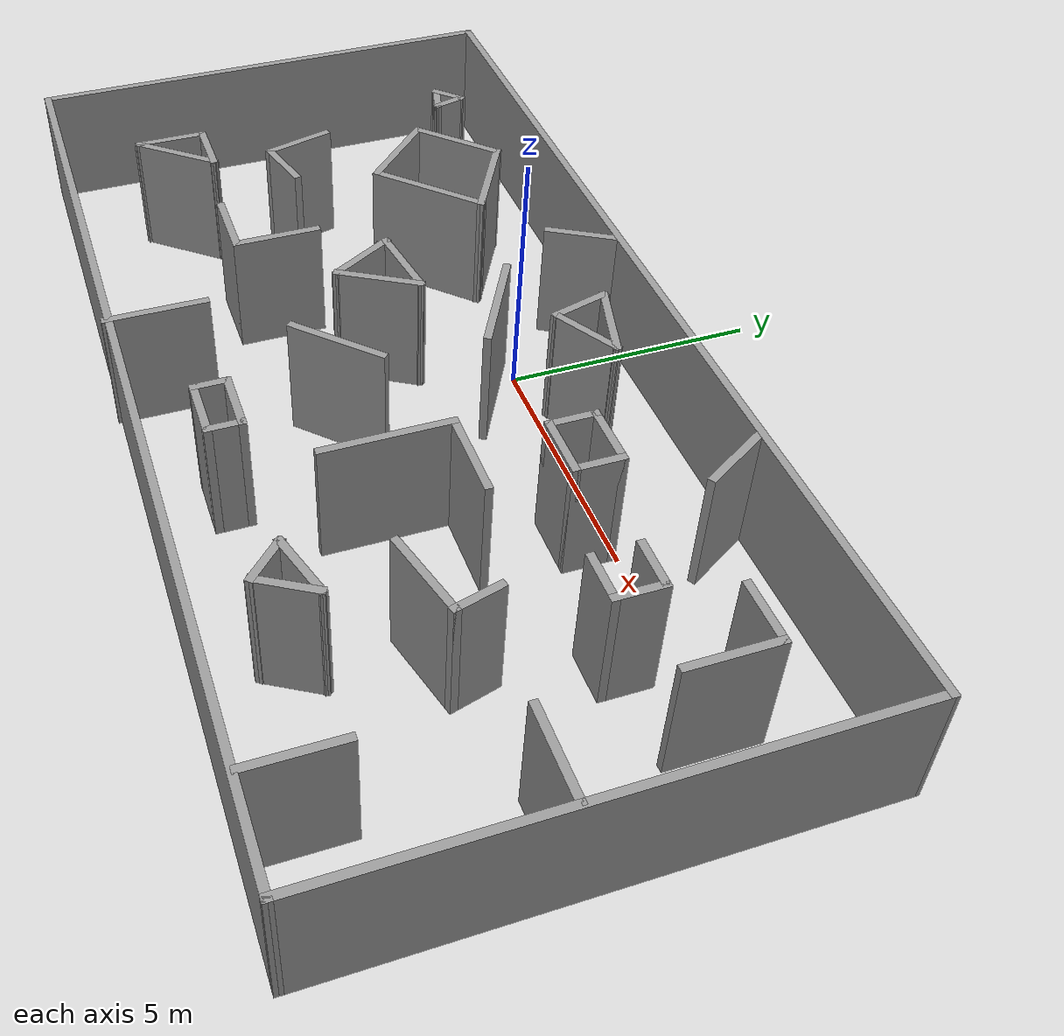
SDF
<?xml version='1.0'?>
<sdf version='1.7'>
  <model name='hard_ground'>
    <pose>0.65293 -2.63053 0 0 -0 0</pose>
    <link name='Wall_0'>
      <collision name='Wall_0_Collision'>
        <geometry>
          <box>
            <size>10.0031 0.15 2.5</size>
          </box>
        </geometry>
        <pose>0 0 1.25 0 -0 0</pose>
      </collision>
      <visual name='Wall_0_Visual'>
        <pose>0 0 1.25 0 -0 0</pose>
        <geometry>
          <box>
            <size>10.0031 0.15 2.5</size>
          </box>
        </geometry>
        <material>
          <script>
            <uri>file://media/materials/scripts/gazebo.material</uri>
            <name>Gazebo/Grey</name>
          </script>
          <ambient>1 1 1 1</ambient>
        </material>
        <meta>
          <layer>0</layer>
        </meta>
      </visual>
      <pose>-9.925 0.018435 0 0 -0 -1.56842</pose>
    </link>
    <link name='Wall_1'>
      <collision name='Wall_1_Collision'>
        <geometry>
          <box>
            <size>20 0.15 2.5</size>
          </box>
        </geometry>
        <pose>0 0 1.25 0 -0 0</pose>
      </collision>
      <visual name='Wall_1_Visual'>
        <pose>0 0 1.25 0 -0 0</pose>
        <geometry>
          <box>
            <size>20 0.15 2.5</size>
          </box>
        </geometry>
        <material>
          <script>
            <uri>file://media/materials/scripts/gazebo.material</uri>
            <name>Gazebo/Grey</name>
          </script>
          <ambient>1 1 1 1</ambient>
        </material>
        <meta>
          <layer>0</layer>
        </meta>
      </visual>
      <pose>0.011693 -4.90011 0 0 -0 0.000804</pose>
    </link>
    <link name='Wall_10'>
      <collision name='Wall_10_Collision'>
        <geometry>
          <box>
            <size>2 0.15 2.5</size>
          </box>
        </geometry>
        <pose>0 0 1.25 0 -0 0</pose>
      </collision>
      <visual name='Wall_10_Visual'>
        <pose>0 0 1.25 0 -0 0</pose>
        <geometry>
          <box>
            <size>2 0.15 2.5</size>
          </box>
        </geometry>
        <material>
          <script>
            <uri>file://media/materials/scripts/gazebo.material</uri>
            <name>Gazebo/Grey</name>
          </script>
          <ambient>1 1 1 1</ambient>
        </material>
        <meta>
          <layer>0</layer>
        </meta>
      </visual>
      <pose>-5.58153 1.80552 0 0 -0 -0.785398</pose>
    </link>
    <link name='Wall_11'>
      <collision name='Wall_11_Collision'>
        <geometry>
          <box>
            <size>2.5 0.15 2.5</size>
          </box>
        </geometry>
        <pose>0 0 1.25 0 -0 0</pose>
      </collision>
      <visual name='Wall_11_Visual'>
        <pose>0 0 1.25 0 -0 0</pose>
        <geometry>
          <box>
            <size>2.5 0.15 2.5</size>
          </box>
        </geometry>
        <material>
          <script>
            <uri>file://media/materials/scripts/gazebo.material</uri>
            <name>Gazebo/Grey</name>
          </script>
          <ambient>1 1 1 1</ambient>
        </material>
        <meta>
          <layer>0</layer>
        </meta>
      </visual>
      <pose>-4.09661 1.98229 0 0 -0 0.785398</pose>
    </link>
    <link name='Wall_12'>
      <collision name='Wall_12_Collision'>
        <geometry>
          <box>
            <size>2.06638 0.15 2.5</size>
          </box>
        </geometry>
        <pose>0 0 1.25 0 -0 0</pose>
      </collision>
      <visual name='Wall_12_Visual'>
        <pose>0 0 1.25 0 -0 0</pose>
        <geometry>
          <box>
            <size>2.06638 0.15 2.5</size>
          </box>
        </geometry>
        <material>
          <script>
            <uri>file://media/materials/scripts/gazebo.material</uri>
            <name>Gazebo/Grey</name>
          </script>
          <ambient>1 1 1 1</ambient>
        </material>
        <meta>
          <layer>0</layer>
        </meta>
      </visual>
      <pose>-4.09661 3.29044 0 0 -0 2.62016</pose>
    </link>
    <link name='Wall_14'>
      <collision name='Wall_14_Collision'>
        <geometry>
          <box>
            <size>1.5 0.15 2.5</size>
          </box>
        </geometry>
        <pose>0 0 1.25 0 -0 0</pose>
      </collision>
      <visual name='Wall_14_Visual'>
        <pose>0 0 1.25 0 -0 0</pose>
        <geometry>
          <box>
            <size>1.5 0.15 2.5</size>
          </box>
        </geometry>
        <material>
          <script>
            <uri>file://media/materials/scripts/gazebo.material</uri>
            <name>Gazebo/Grey</name>
          </script>
          <ambient>1 1 1 1</ambient>
        </material>
        <meta>
          <layer>0</layer>
        </meta>
      </visual>
      <pose>-6.56298 -0.102434 0 0 -0 -1.309</pose>
    </link>
    <link name='Wall_15'>
      <collision name='Wall_15_Collision'>
        <geometry>
          <box>
            <size>1.25 0.15 2.5</size>
          </box>
        </geometry>
        <pose>0 0 1.25 0 -0 0</pose>
      </collision>
      <visual name='Wall_15_Visual'>
        <pose>0 0 1.25 0 -0 0</pose>
        <geometry>
          <box>
            <size>1.25 0.15 2.5</size>
          </box>
        </geometry>
        <material>
          <script>
            <uri>file://media/materials/scripts/gazebo.material</uri>
            <name>Gazebo/Grey</name>
          </script>
          <ambient>1 1 1 1</ambient>
        </material>
        <meta>
          <layer>0</layer>
        </meta>
      </visual>
      <pose>-5.85702 -0.612083 0 0 -0 0.261799</pose>
    </link>
    <link name='Wall_17'>
      <collision name='Wall_17_Collision'>
        <geometry>
          <box>
            <size>1.25 0.15 2.5</size>
          </box>
        </geometry>
        <pose>0 0 1.25 0 -0 0</pose>
      </collision>
      <visual name='Wall_17_Visual'>
        <pose>0 0 1.25 0 -0 0</pose>
        <geometry>
          <box>
            <size>1.25 0.15 2.5</size>
          </box>
        </geometry>
        <material>
          <script>
            <uri>file://media/materials/scripts/gazebo.material</uri>
            <name>Gazebo/Grey</name>
          </script>
          <ambient>1 1 1 1</ambient>
        </material>
        <meta>
          <layer>0</layer>
        </meta>
      </visual>
      <pose>-6.94575 -1.96463 0 0 -0 3.14159</pose>
    </link>
    <link name='Wall_18'>
      <collision name='Wall_18_Collision'>
        <geometry>
          <box>
            <size>1.5 0.15 2.5</size>
          </box>
        </geometry>
        <pose>0 0 1.25 0 -0 0</pose>
      </collision>
      <visual name='Wall_18_Visual'>
        <pose>0 0 1.25 0 -0 0</pose>
        <geometry>
          <box>
            <size>1.5 0.15 2.5</size>
          </box>
        </geometry>
        <material>
          <script>
            <uri>file://media/materials/scripts/gazebo.material</uri>
            <name>Gazebo/Grey</name>
          </script>
          <ambient>1 1 1 1</ambient>
        </material>
        <meta>
          <layer>0</layer>
        </meta>
      </visual>
      <pose>-7.49575 -2.63963 0 0 -0 -1.5708</pose>
    </link>
    <link name='Wall_19'>
      <collision name='Wall_19_Collision'>
        <geometry>
          <box>
            <size>1.89141 0.15 2.5</size>
          </box>
        </geometry>
        <pose>0 0 1.25 0 -0 0</pose>
      </collision>
      <visual name='Wall_19_Visual'>
        <pose>0 0 1.25 0 -0 0</pose>
        <geometry>
          <box>
            <size>1.89141 0.15 2.5</size>
          </box>
        </geometry>
        <material>
          <script>
            <uri>file://media/materials/scripts/gazebo.material</uri>
            <name>Gazebo/Grey</name>
          </script>
          <ambient>1 1 1 1</ambient>
        </material>
        <meta>
          <layer>0</layer>
        </meta>
      </visual>
      <pose>-6.94575 -2.63963 0 0 -0 0.887087</pose>
    </link>
    <link name='Wall_2'>
      <collision name='Wall_2_Collision'>
        <geometry>
          <box>
            <size>10.0031 0.15 2.5</size>
          </box>
        </geometry>
        <pose>0 0 1.25 0 -0 0</pose>
      </collision>
      <visual name='Wall_2_Visual'>
        <pose>0 0 1.25 0 -0 0</pose>
        <geometry>
          <box>
            <size>10.0031 0.15 2.5</size>
          </box>
        </geometry>
        <material>
          <script>
            <uri>file://media/materials/scripts/gazebo.material</uri>
            <name>Gazebo/Grey</name>
          </script>
          <ambient>1 1 1 1</ambient>
        </material>
        <meta>
          <layer>0</layer>
        </meta>
      </visual>
      <pose>9.925 0.034398 0 0 -0 1.57317</pose>
    </link>
    <link name='Wall_21'>
      <collision name='Wall_21_Collision'>
        <geometry>
          <box>
            <size>1.5 0.15 2.5</size>
          </box>
        </geometry>
        <pose>0 0 1.25 0 -0 0</pose>
      </collision>
      <visual name='Wall_21_Visual'>
        <pose>0 0 1.25 0 -0 0</pose>
        <geometry>
          <box>
            <size>1.5 0.15 2.5</size>
          </box>
        </geometry>
        <material>
          <script>
            <uri>file://media/materials/scripts/gazebo.material</uri>
            <name>Gazebo/Grey</name>
          </script>
          <ambient>1 1 1 1</ambient>
        </material>
        <meta>
          <layer>0</layer>
        </meta>
      </visual>
      <pose>-4.11167 -2.16577 0 0 -0 0</pose>
    </link>
    <link name='Wall_22'>
      <collision name='Wall_22_Collision'>
        <geometry>
          <box>
            <size>1.75 0.15 2.5</size>
          </box>
        </geometry>
        <pose>0 0 1.25 0 -0 0</pose>
      </collision>
      <visual name='Wall_22_Visual'>
        <pose>0 0 1.25 0 -0 0</pose>
        <geometry>
          <box>
            <size>1.75 0.15 2.5</size>
          </box>
        </geometry>
        <material>
          <script>
            <uri>file://media/materials/scripts/gazebo.material</uri>
            <name>Gazebo/Grey</name>
          </script>
          <ambient>1 1 1 1</ambient>
        </material>
        <meta>
          <layer>0</layer>
        </meta>
      </visual>
      <pose>-3.43667 -1.36577 0 0 -0 1.5708</pose>
    </link>
    <link name='Wall_24'>
      <collision name='Wall_24_Collision'>
        <geometry>
          <box>
            <size>1.5 0.15 2.5</size>
          </box>
        </geometry>
        <pose>0 0 1.25 0 -0 0</pose>
      </collision>
      <visual name='Wall_24_Visual'>
        <pose>0 0 1.25 0 -0 0</pose>
        <geometry>
          <box>
            <size>1.5 0.15 2.5</size>
          </box>
        </geometry>
        <material>
          <script>
            <uri>file://media/materials/scripts/gazebo.material</uri>
            <name>Gazebo/Grey</name>
          </script>
          <ambient>1 1 1 1</ambient>
        </material>
        <meta>
          <layer>0</layer>
        </meta>
      </visual>
      <pose>-2.29701 0.02534 0 0 -0 -1.0472</pose>
    </link>
    <link name='Wall_25'>
      <collision name='Wall_25_Collision'>
        <geometry>
          <box>
            <size>1.75 0.15 2.5</size>
          </box>
        </geometry>
        <pose>0 0 1.25 0 -0 0</pose>
      </collision>
      <visual name='Wall_25_Visual'>
        <pose>0 0 1.25 0 -0 0</pose>
        <geometry>
          <box>
            <size>1.75 0.15 2.5</size>
          </box>
        </geometry>
        <material>
          <script>
            <uri>file://media/materials/scripts/gazebo.material</uri>
            <name>Gazebo/Grey</name>
          </script>
          <ambient>1 1 1 1</ambient>
        </material>
        <meta>
          <layer>0</layer>
        </meta>
      </visual>
      <pose>-1.55951 0.133593 0 0 -0 1.0472</pose>
    </link>
    <link name='Wall_26'>
      <collision name='Wall_26_Collision'>
        <geometry>
          <box>
            <size>1.64081 0.15 2.5</size>
          </box>
        </geometry>
        <pose>0 0 1.25 0 -0 0</pose>
      </collision>
      <visual name='Wall_26_Visual'>
        <pose>0 0 1.25 0 -0 0</pose>
        <geometry>
          <box>
            <size>1.64081 0.15 2.5</size>
          </box>
        </geometry>
        <material>
          <script>
            <uri>file://media/materials/scripts/gazebo.material</uri>
            <name>Gazebo/Grey</name>
          </script>
          <ambient>1 1 1 1</ambient>
        </material>
        <meta>
          <layer>0</layer>
        </meta>
      </visual>
      <pose>-1.89701 0.71816 0 0 -0 -2.99585</pose>
    </link>
    <link name='Wall_28'>
      <collision name='Wall_28_Collision'>
        <geometry>
          <box>
            <size>2.25 0.15 2.5</size>
          </box>
        </geometry>
        <pose>0 0 1.25 0 -0 0</pose>
      </collision>
      <visual name='Wall_28_Visual'>
        <pose>0 0 1.25 0 -0 0</pose>
        <geometry>
          <box>
            <size>2.25 0.15 2.5</size>
          </box>
        </geometry>
        <material>
          <script>
            <uri>file://media/materials/scripts/gazebo.material</uri>
            <name>Gazebo/Grey</name>
          </script>
          <ambient>1 1 1 1</ambient>
        </material>
        <meta>
          <layer>0</layer>
        </meta>
      </visual>
      <pose>-0.236783 2.01581 0 0 -0 -0.523599</pose>
    </link>
    <link name='Wall_3'>
      <collision name='Wall_3_Collision'>
        <geometry>
          <box>
            <size>20 0.15 2.5</size>
          </box>
        </geometry>
        <pose>0 0 1.25 0 -0 0</pose>
      </collision>
      <visual name='Wall_3_Visual'>
        <pose>0 0 1.25 0 -0 0</pose>
        <geometry>
          <box>
            <size>20 0.15 2.5</size>
          </box>
        </geometry>
        <material>
          <script>
            <uri>file://media/materials/scripts/gazebo.material</uri>
            <name>Gazebo/Grey</name>
          </script>
          <ambient>1 1 1 1</ambient>
        </material>
        <meta>
          <layer>0</layer>
        </meta>
      </visual>
      <pose>-0.011694 4.95294 0 0 -0 -3.14079</pose>
    </link>
    <link name='Wall_32'>
      <collision name='Wall_32_Collision'>
        <geometry>
          <box>
            <size>1.5 0.15 2.5</size>
          </box>
        </geometry>
        <pose>0 0 1.25 0 -0 0</pose>
      </collision>
      <visual name='Wall_32_Visual'>
        <pose>0 0 1.25 0 -0 0</pose>
        <geometry>
          <box>
            <size>1.5 0.15 2.5</size>
          </box>
        </geometry>
        <material>
          <script>
            <uri>file://media/materials/scripts/gazebo.material</uri>
            <name>Gazebo/Grey</name>
          </script>
          <ambient>1 1 1 1</ambient>
        </material>
        <meta>
          <layer>0</layer>
        </meta>
      </visual>
      <pose>-1.66463 4.32964 0 0 -0 -2.0944</pose>
    </link>
    <link name='Wall_34'>
      <collision name='Wall_34_Collision'>
        <geometry>
          <box>
            <size>1.25 0.15 2.5</size>
          </box>
        </geometry>
        <pose>0 0 1.25 0 -0 0</pose>
      </collision>
      <visual name='Wall_34_Visual'>
        <pose>0 0 1.25 0 -0 0</pose>
        <geometry>
          <box>
            <size>1.25 0.15 2.5</size>
          </box>
        </geometry>
        <material>
          <script>
            <uri>file://media/materials/scripts/gazebo.material</uri>
            <name>Gazebo/Grey</name>
          </script>
          <ambient>1 1 1 1</ambient>
        </material>
        <meta>
          <layer>0</layer>
        </meta>
      </visual>
      <pose>0.34385 3.4175 0 0 -0 -1.309</pose>
    </link>
    <link name='Wall_35'>
      <collision name='Wall_35_Collision'>
        <geometry>
          <box>
            <size>1.5 0.15 2.5</size>
          </box>
        </geometry>
        <pose>0 0 1.25 0 -0 0</pose>
      </collision>
      <visual name='Wall_35_Visual'>
        <pose>0 0 1.25 0 -0 0</pose>
        <geometry>
          <box>
            <size>1.5 0.15 2.5</size>
          </box>
        </geometry>
        <material>
          <script>
            <uri>file://media/materials/scripts/gazebo.material</uri>
            <name>Gazebo/Grey</name>
          </script>
          <ambient>1 1 1 1</ambient>
        </material>
        <meta>
          <layer>0</layer>
        </meta>
      </visual>
      <pose>1.07077 3.22374 0 0 -0 0.523599</pose>
    </link>
    <link name='Wall_36'>
      <collision name='Wall_36_Collision'>
        <geometry>
          <box>
            <size>1.6546 0.15 2.5</size>
          </box>
        </geometry>
        <pose>0 0 1.25 0 -0 0</pose>
      </collision>
      <visual name='Wall_36_Visual'>
        <pose>0 0 1.25 0 -0 0</pose>
        <geometry>
          <box>
            <size>1.6546 0.15 2.5</size>
          </box>
        </geometry>
        <material>
          <script>
            <uri>file://media/materials/scripts/gazebo.material</uri>
            <name>Gazebo/Grey</name>
          </script>
          <ambient>1 1 1 1</ambient>
        </material>
        <meta>
          <layer>0</layer>
        </meta>
      </visual>
      <pose>0.928418 3.755 0 0 -0 2.8811</pose>
    </link>
    <link name='Wall_39'>
      <collision name='Wall_39_Collision'>
        <geometry>
          <box>
            <size>2 0.15 2.5</size>
          </box>
        </geometry>
        <pose>0 0 1.25 0 -0 0</pose>
      </collision>
      <visual name='Wall_39_Visual'>
        <pose>0 0 1.25 0 -0 0</pose>
        <geometry>
          <box>
            <size>2 0.15 2.5</size>
          </box>
        </geometry>
        <material>
          <script>
            <uri>file://media/materials/scripts/gazebo.material</uri>
            <name>Gazebo/Grey</name>
          </script>
          <ambient>1 1 1 1</ambient>
        </material>
        <meta>
          <layer>0</layer>
        </meta>
      </visual>
      <pose>-0.069651 -1.10942 0 0 -0 0.785398</pose>
    </link>
    <link name='Wall_42'>
      <collision name='Wall_42_Collision'>
        <geometry>
          <box>
            <size>2 0.15 2.5</size>
          </box>
        </geometry>
        <pose>0 0 1.25 0 -0 0</pose>
      </collision>
      <visual name='Wall_42_Visual'>
        <pose>0 0 1.25 0 -0 0</pose>
        <geometry>
          <box>
            <size>2 0.15 2.5</size>
          </box>
        </geometry>
        <material>
          <script>
            <uri>file://media/materials/scripts/gazebo.material</uri>
            <name>Gazebo/Grey</name>
          </script>
          <ambient>1 1 1 1</ambient>
        </material>
        <meta>
          <layer>0</layer>
        </meta>
      </visual>
      <pose>-1.89031 -4.0361 0 0 -0 -1.5708</pose>
    </link>
    <link name='Wall_45'>
      <collision name='Wall_45_Collision'>
        <geometry>
          <box>
            <size>0.75 0.15 2.5</size>
          </box>
        </geometry>
        <pose>0 0 1.25 0 -0 0</pose>
      </collision>
      <visual name='Wall_45_Visual'>
        <pose>0 0 1.25 0 -0 0</pose>
        <geometry>
          <box>
            <size>0.75 0.15 2.5</size>
          </box>
        </geometry>
        <material>
          <script>
            <uri>file://media/materials/scripts/gazebo.material</uri>
            <name>Gazebo/Grey</name>
          </script>
          <ambient>1 1 1 1</ambient>
        </material>
        <meta>
          <layer>0</layer>
        </meta>
      </visual>
      <pose>0.382522 -3.51167 0 0 -0 -1.5708</pose>
    </link>
    <link name='Wall_46'>
      <collision name='Wall_46_Collision'>
        <geometry>
          <box>
            <size>1.25 0.15 2.5</size>
          </box>
        </geometry>
        <pose>0 0 1.25 0 -0 0</pose>
      </collision>
      <visual name='Wall_46_Visual'>
        <pose>0 0 1.25 0 -0 0</pose>
        <geometry>
          <box>
            <size>1.25 0.15 2.5</size>
          </box>
        </geometry>
        <material>
          <script>
            <uri>file://media/materials/scripts/gazebo.material</uri>
            <name>Gazebo/Grey</name>
          </script>
          <ambient>1 1 1 1</ambient>
        </material>
        <meta>
          <layer>0</layer>
        </meta>
      </visual>
      <pose>0.932522 -3.81167 0 0 -0 0</pose>
    </link>
    <link name='Wall_47'>
      <collision name='Wall_47_Collision'>
        <geometry>
          <box>
            <size>0.75 0.15 2.5</size>
          </box>
        </geometry>
        <pose>0 0 1.25 0 -0 0</pose>
      </collision>
      <visual name='Wall_47_Visual'>
        <pose>0 0 1.25 0 -0 0</pose>
        <geometry>
          <box>
            <size>0.75 0.15 2.5</size>
          </box>
        </geometry>
        <material>
          <script>
            <uri>file://media/materials/scripts/gazebo.material</uri>
            <name>Gazebo/Grey</name>
          </script>
          <ambient>1 1 1 1</ambient>
        </material>
        <meta>
          <layer>0</layer>
        </meta>
      </visual>
      <pose>1.48252 -3.51167 0 0 -0 1.5708</pose>
    </link>
    <link name='Wall_48'>
      <collision name='Wall_48_Collision'>
        <geometry>
          <box>
            <size>1.25 0.15 2.5</size>
          </box>
        </geometry>
        <pose>0 0 1.25 0 -0 0</pose>
      </collision>
      <visual name='Wall_48_Visual'>
        <pose>0 0 1.25 0 -0 0</pose>
        <geometry>
          <box>
            <size>1.25 0.15 2.5</size>
          </box>
        </geometry>
        <material>
          <script>
            <uri>file://media/materials/scripts/gazebo.material</uri>
            <name>Gazebo/Grey</name>
          </script>
          <ambient>1 1 1 1</ambient>
        </material>
        <meta>
          <layer>0</layer>
        </meta>
      </visual>
      <pose>0.932522 -3.21167 0 0 -0 3.14159</pose>
    </link>
    <link name='Wall_5'>
      <collision name='Wall_5_Collision'>
        <geometry>
          <box>
            <size>0.75 0.15 2.5</size>
          </box>
        </geometry>
        <pose>0 0 1.25 0 -0 0</pose>
      </collision>
      <visual name='Wall_5_Visual'>
        <pose>0 0 1.25 0 -0 0</pose>
        <geometry>
          <box>
            <size>0.75 0.15 2.5</size>
          </box>
        </geometry>
        <material>
          <script>
            <uri>file://media/materials/scripts/gazebo.material</uri>
            <name>Gazebo/Grey</name>
          </script>
          <ambient>1 1 1 1</ambient>
        </material>
        <meta>
          <layer>0</layer>
        </meta>
      </visual>
      <pose>-7.39231 3.55561 0 0 -0 -2.35619</pose>
    </link>
    <link name='Wall_50'>
      <collision name='Wall_50_Collision'>
        <geometry>
          <box>
            <size>2.5 0.15 2.5</size>
          </box>
        </geometry>
        <pose>0 0 1.25 0 -0 0</pose>
      </collision>
      <visual name='Wall_50_Visual'>
        <pose>0 0 1.25 0 -0 0</pose>
        <geometry>
          <box>
            <size>2.5 0.15 2.5</size>
          </box>
        </geometry>
        <material>
          <script>
            <uri>file://media/materials/scripts/gazebo.material</uri>
            <name>Gazebo/Grey</name>
          </script>
          <ambient>1 1 1 1</ambient>
        </material>
        <meta>
          <layer>0</layer>
        </meta>
      </visual>
      <pose>2.55479 -0.990766 0 0 -0 1.5708</pose>
    </link>
    <link name='Wall_51'>
      <collision name='Wall_51_Collision'>
        <geometry>
          <box>
            <size>1.75 0.15 2.5</size>
          </box>
        </geometry>
        <pose>0 0 1.25 0 -0 0</pose>
      </collision>
      <visual name='Wall_51_Visual'>
        <pose>0 0 1.25 0 -0 0</pose>
        <geometry>
          <box>
            <size>1.75 0.15 2.5</size>
          </box>
        </geometry>
        <material>
          <script>
            <uri>file://media/materials/scripts/gazebo.material</uri>
            <name>Gazebo/Grey</name>
          </script>
          <ambient>1 1 1 1</ambient>
        </material>
        <meta>
          <layer>0</layer>
        </meta>
      </visual>
      <pose>3.35479 0.184234 0 0 -0 0</pose>
    </link>
    <link name='Wall_54'>
      <collision name='Wall_54_Collision'>
        <geometry>
          <box>
            <size>1 0.15 2.5</size>
          </box>
        </geometry>
        <pose>0 0 1.25 0 -0 0</pose>
      </collision>
      <visual name='Wall_54_Visual'>
        <pose>0 0 1.25 0 -0 0</pose>
        <geometry>
          <box>
            <size>1 0.15 2.5</size>
          </box>
        </geometry>
        <material>
          <script>
            <uri>file://media/materials/scripts/gazebo.material</uri>
            <name>Gazebo/Grey</name>
          </script>
          <ambient>1 1 1 1</ambient>
        </material>
        <meta>
          <layer>0</layer>
        </meta>
      </visual>
      <pose>3.11797 2.0957 0 0 -0 -1.5708</pose>
    </link>
    <link name='Wall_55'>
      <collision name='Wall_55_Collision'>
        <geometry>
          <box>
            <size>1.25 0.15 2.5</size>
          </box>
        </geometry>
        <pose>0 0 1.25 0 -0 0</pose>
      </collision>
      <visual name='Wall_55_Visual'>
        <pose>0 0 1.25 0 -0 0</pose>
        <geometry>
          <box>
            <size>1.25 0.15 2.5</size>
          </box>
        </geometry>
        <material>
          <script>
            <uri>file://media/materials/scripts/gazebo.material</uri>
            <name>Gazebo/Grey</name>
          </script>
          <ambient>1 1 1 1</ambient>
        </material>
        <meta>
          <layer>0</layer>
        </meta>
      </visual>
      <pose>3.66797 1.6707 0 0 -0 0</pose>
    </link>
    <link name='Wall_56'>
      <collision name='Wall_56_Collision'>
        <geometry>
          <box>
            <size>1 0.15 2.5</size>
          </box>
        </geometry>
        <pose>0 0 1.25 0 -0 0</pose>
      </collision>
      <visual name='Wall_56_Visual'>
        <pose>0 0 1.25 0 -0 0</pose>
        <geometry>
          <box>
            <size>1 0.15 2.5</size>
          </box>
        </geometry>
        <material>
          <script>
            <uri>file://media/materials/scripts/gazebo.material</uri>
            <name>Gazebo/Grey</name>
          </script>
          <ambient>1 1 1 1</ambient>
        </material>
        <meta>
          <layer>0</layer>
        </meta>
      </visual>
      <pose>4.21797 2.0957 0 0 -0 1.5708</pose>
    </link>
    <link name='Wall_57'>
      <collision name='Wall_57_Collision'>
        <geometry>
          <box>
            <size>1.25 0.15 2.5</size>
          </box>
        </geometry>
        <pose>0 0 1.25 0 -0 0</pose>
      </collision>
      <visual name='Wall_57_Visual'>
        <pose>0 0 1.25 0 -0 0</pose>
        <geometry>
          <box>
            <size>1.25 0.15 2.5</size>
          </box>
        </geometry>
        <material>
          <script>
            <uri>file://media/materials/scripts/gazebo.material</uri>
            <name>Gazebo/Grey</name>
          </script>
          <ambient>1 1 1 1</ambient>
        </material>
        <meta>
          <layer>0</layer>
        </meta>
      </visual>
      <pose>3.66797 2.5207 0 0 -0 3.14159</pose>
    </link>
    <link name='Wall_59'>
      <collision name='Wall_59_Collision'>
        <geometry>
          <box>
            <size>1.5 0.15 2.5</size>
          </box>
        </geometry>
        <pose>0 0 1.25 0 -0 0</pose>
      </collision>
      <visual name='Wall_59_Visual'>
        <pose>0 0 1.25 0 -0 0</pose>
        <geometry>
          <box>
            <size>1.5 0.15 2.5</size>
          </box>
        </geometry>
        <material>
          <script>
            <uri>file://media/materials/scripts/gazebo.material</uri>
            <name>Gazebo/Grey</name>
          </script>
          <ambient>1 1 1 1</ambient>
        </material>
        <meta>
          <layer>0</layer>
        </meta>
      </visual>
      <pose>4.78296 4.28942 0 0 -0 -1.0472</pose>
    </link>
    <link name='Wall_6'>
      <collision name='Wall_6_Collision'>
        <geometry>
          <box>
            <size>0.75 0.15 2.5</size>
          </box>
        </geometry>
        <pose>0 0 1.25 0 -0 0</pose>
      </collision>
      <visual name='Wall_6_Visual'>
        <pose>0 0 1.25 0 -0 0</pose>
        <geometry>
          <box>
            <size>0.75 0.15 2.5</size>
          </box>
        </geometry>
        <material>
          <script>
            <uri>file://media/materials/scripts/gazebo.material</uri>
            <name>Gazebo/Grey</name>
          </script>
          <ambient>1 1 1 1</ambient>
        </material>
        <meta>
          <layer>0</layer>
        </meta>
      </visual>
      <pose>-7.31467 3.26583 0 0 -0 -0.261799</pose>
    </link>
    <link name='Wall_61'>
      <collision name='Wall_61_Collision'>
        <geometry>
          <box>
            <size>1.25 0.15 2.5</size>
          </box>
        </geometry>
        <pose>0 0 1.25 0 -0 0</pose>
      </collision>
      <visual name='Wall_61_Visual'>
        <pose>0 0 1.25 0 -0 0</pose>
        <geometry>
          <box>
            <size>1.25 0.15 2.5</size>
          </box>
        </geometry>
        <material>
          <script>
            <uri>file://media/materials/scripts/gazebo.material</uri>
            <name>Gazebo/Grey</name>
          </script>
          <ambient>1 1 1 1</ambient>
        </material>
        <meta>
          <layer>0</layer>
        </meta>
      </visual>
      <pose>7.81136 3.18444 0 0 -0 0</pose>
    </link>
    <link name='Wall_62'>
      <collision name='Wall_62_Collision'>
        <geometry>
          <box>
            <size>1.75 0.15 2.5</size>
          </box>
        </geometry>
        <pose>0 0 1.25 0 -0 0</pose>
      </collision>
      <visual name='Wall_62_Visual'>
        <pose>0 0 1.25 0 -0 0</pose>
        <geometry>
          <box>
            <size>1.75 0.15 2.5</size>
          </box>
        </geometry>
        <material>
          <script>
            <uri>file://media/materials/scripts/gazebo.material</uri>
            <name>Gazebo/Grey</name>
          </script>
          <ambient>1 1 1 1</ambient>
        </material>
        <meta>
          <layer>0</layer>
        </meta>
      </visual>
      <pose>8.36136 2.38444 0 0 -0 -1.5708</pose>
    </link>
    <link name='Wall_64'>
      <collision name='Wall_64_Collision'>
        <geometry>
          <box>
            <size>1 0.15 2.5</size>
          </box>
        </geometry>
        <pose>0 0 1.25 0 -0 0</pose>
      </collision>
      <visual name='Wall_64_Visual'>
        <pose>0 0 1.25 0 -0 0</pose>
        <geometry>
          <box>
            <size>1 0.15 2.5</size>
          </box>
        </geometry>
        <material>
          <script>
            <uri>file://media/materials/scripts/gazebo.material</uri>
            <name>Gazebo/Grey</name>
          </script>
          <ambient>1 1 1 1</ambient>
        </material>
        <meta>
          <layer>0</layer>
        </meta>
      </visual>
      <pose>6.45944 2.01786 0 0 -0 0</pose>
    </link>
    <link name='Wall_65'>
      <collision name='Wall_65_Collision'>
        <geometry>
          <box>
            <size>1 0.15 2.5</size>
          </box>
        </geometry>
        <pose>0 0 1.25 0 -0 0</pose>
      </collision>
      <visual name='Wall_65_Visual'>
        <pose>0 0 1.25 0 -0 0</pose>
        <geometry>
          <box>
            <size>1 0.15 2.5</size>
          </box>
        </geometry>
        <material>
          <script>
            <uri>file://media/materials/scripts/gazebo.material</uri>
            <name>Gazebo/Grey</name>
          </script>
          <ambient>1 1 1 1</ambient>
        </material>
        <meta>
          <layer>0</layer>
        </meta>
      </visual>
      <pose>6.88444 1.59286 0 0 -0 -1.5708</pose>
    </link>
    <link name='Wall_66'>
      <collision name='Wall_66_Collision'>
        <geometry>
          <box>
            <size>1 0.15 2.5</size>
          </box>
        </geometry>
        <pose>0 0 1.25 0 -0 0</pose>
      </collision>
      <visual name='Wall_66_Visual'>
        <pose>0 0 1.25 0 -0 0</pose>
        <geometry>
          <box>
            <size>1 0.15 2.5</size>
          </box>
        </geometry>
        <material>
          <script>
            <uri>file://media/materials/scripts/gazebo.material</uri>
            <name>Gazebo/Grey</name>
          </script>
          <ambient>1 1 1 1</ambient>
        </material>
        <meta>
          <layer>0</layer>
        </meta>
      </visual>
      <pose>6.45944 1.16786 0 0 -0 3.14159</pose>
    </link>
    <link name='Wall_68'>
      <collision name='Wall_68_Collision'>
        <geometry>
          <box>
            <size>1.75 0.15 2.5</size>
          </box>
        </geometry>
        <pose>0 0 1.25 0 -0 0</pose>
      </collision>
      <visual name='Wall_68_Visual'>
        <pose>0 0 1.25 0 -0 0</pose>
        <geometry>
          <box>
            <size>1.75 0.15 2.5</size>
          </box>
        </geometry>
        <material>
          <script>
            <uri>file://media/materials/scripts/gazebo.material</uri>
            <name>Gazebo/Grey</name>
          </script>
          <ambient>1 1 1 1</ambient>
        </material>
        <meta>
          <layer>0</layer>
        </meta>
      </visual>
      <pose>5.58025 -1.3553 0 0 -0 0.261799</pose>
    </link>
    <link name='Wall_69'>
      <collision name='Wall_69_Collision'>
        <geometry>
          <box>
            <size>1 0.15 2.5</size>
          </box>
        </geometry>
        <pose>0 0 1.25 0 -0 0</pose>
      </collision>
      <visual name='Wall_69_Visual'>
        <pose>0 0 1.25 0 -0 0</pose>
        <geometry>
          <box>
            <size>1 0.15 2.5</size>
          </box>
        </geometry>
        <material>
          <script>
            <uri>file://media/materials/scripts/gazebo.material</uri>
            <name>Gazebo/Grey</name>
          </script>
          <ambient>1 1 1 1</ambient>
        </material>
        <meta>
          <layer>0</layer>
        </meta>
      </visual>
      <pose>6.24299 -0.73773 0 0 -0 1.8326</pose>
    </link>
    <link name='Wall_7'>
      <collision name='Wall_7_Collision'>
        <geometry>
          <box>
            <size>0.75 0.15 2.5</size>
          </box>
        </geometry>
        <pose>0 0 1.25 0 -0 0</pose>
      </collision>
      <visual name='Wall_7_Visual'>
        <pose>0 0 1.25 0 -0 0</pose>
        <geometry>
          <box>
            <size>0.75 0.15 2.5</size>
          </box>
        </geometry>
        <material>
          <script>
            <uri>file://media/materials/scripts/gazebo.material</uri>
            <name>Gazebo/Grey</name>
          </script>
          <ambient>1 1 1 1</ambient>
        </material>
        <meta>
          <layer>0</layer>
        </meta>
      </visual>
      <pose>-7.10253 3.47796 0 0 -0 1.8326</pose>
    </link>
    <link name='Wall_71'>
      <collision name='Wall_71_Collision'>
        <geometry>
          <box>
            <size>1.75 0.15 2.5</size>
          </box>
        </geometry>
        <pose>0 0 1.25 0 -0 0</pose>
      </collision>
      <visual name='Wall_71_Visual'>
        <pose>0 0 1.25 0 -0 0</pose>
        <geometry>
          <box>
            <size>1.75 0.15 2.5</size>
          </box>
        </geometry>
        <material>
          <script>
            <uri>file://media/materials/scripts/gazebo.material</uri>
            <name>Gazebo/Grey</name>
          </script>
          <ambient>1 1 1 1</ambient>
        </material>
        <meta>
          <layer>0</layer>
        </meta>
      </visual>
      <pose>9.08716 -0.657248 0 0 -0 0</pose>
    </link>
    <link name='Wall_73'>
      <collision name='Wall_73_Collision'>
        <geometry>
          <box>
            <size>1.75 0.15 2.5</size>
          </box>
        </geometry>
        <pose>0 0 1.25 0 -0 0</pose>
      </collision>
      <visual name='Wall_73_Visual'>
        <pose>0 0 1.25 0 -0 0</pose>
        <geometry>
          <box>
            <size>1.75 0.15 2.5</size>
          </box>
        </geometry>
        <material>
          <script>
            <uri>file://media/materials/scripts/gazebo.material</uri>
            <name>Gazebo/Grey</name>
          </script>
          <ambient>1 1 1 1</ambient>
        </material>
        <meta>
          <layer>0</layer>
        </meta>
      </visual>
      <pose>8.02568 -4.03179 0 0 -0 -1.5708</pose>
    </link>
    <link name='Wall_75'>
      <collision name='Wall_75_Collision'>
        <geometry>
          <box>
            <size>1 0.15 2.5</size>
          </box>
        </geometry>
        <pose>0 0 1.25 0 -0 0</pose>
      </collision>
      <visual name='Wall_75_Visual'>
        <pose>0 0 1.25 0 -0 0</pose>
        <geometry>
          <box>
            <size>1 0.15 2.5</size>
          </box>
        </geometry>
        <material>
          <script>
            <uri>file://media/materials/scripts/gazebo.material</uri>
            <name>Gazebo/Grey</name>
          </script>
          <ambient>1 1 1 1</ambient>
        </material>
        <meta>
          <layer>0</layer>
        </meta>
      </visual>
      <pose>4.56496 -3.57253 0 0 -0 -0.785398</pose>
    </link>
    <link name='Wall_76'>
      <collision name='Wall_76_Collision'>
        <geometry>
          <box>
            <size>1.25 0.15 2.5</size>
          </box>
        </geometry>
        <pose>0 0 1.25 0 -0 0</pose>
      </collision>
      <visual name='Wall_76_Visual'>
        <pose>0 0 1.25 0 -0 0</pose>
        <geometry>
          <box>
            <size>1.25 0.15 2.5</size>
          </box>
        </geometry>
        <material>
          <script>
            <uri>file://media/materials/scripts/gazebo.material</uri>
            <name>Gazebo/Grey</name>
          </script>
          <ambient>1 1 1 1</ambient>
        </material>
        <meta>
          <layer>0</layer>
        </meta>
      </visual>
      <pose>5.14048 -3.39674 0 0 -0 1.0472</pose>
    </link>
    <link name='Wall_77'>
      <collision name='Wall_77_Collision'>
        <geometry>
          <box>
            <size>1.35354 0.15 2.5</size>
          </box>
        </geometry>
        <pose>0 0 1.25 0 -0 0</pose>
      </collision>
      <visual name='Wall_77_Visual'>
        <pose>0 0 1.25 0 -0 0</pose>
        <geometry>
          <box>
            <size>1.35354 0.15 2.5</size>
          </box>
        </geometry>
        <material>
          <script>
            <uri>file://media/materials/scripts/gazebo.material</uri>
            <name>Gazebo/Grey</name>
          </script>
          <ambient>1 1 1 1</ambient>
        </material>
        <meta>
          <layer>0</layer>
        </meta>
      </visual>
      <pose>4.83996 -3.09622 0 0 -0 -2.84514</pose>
    </link>
    <link name='Wall_9'>
      <collision name='Wall_9_Collision'>
        <geometry>
          <box>
            <size>2 0.15 2.5</size>
          </box>
        </geometry>
        <pose>0 0 1.25 0 -0 0</pose>
      </collision>
      <visual name='Wall_9_Visual'>
        <pose>0 0 1.25 0 -0 0</pose>
        <geometry>
          <box>
            <size>2 0.15 2.5</size>
          </box>
        </geometry>
        <material>
          <script>
            <uri>file://media/materials/scripts/gazebo.material</uri>
            <name>Gazebo/Grey</name>
          </script>
          <ambient>1 1 1 1</ambient>
        </material>
        <meta>
          <layer>0</layer>
        </meta>
      </visual>
      <pose>-5.58153 3.11366 0 0 -0 -2.35619</pose>
    </link>
    <static>1</static>
  </model>
</sdf>
